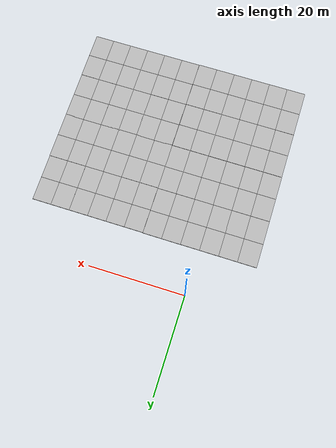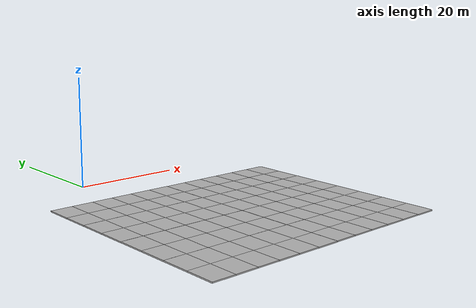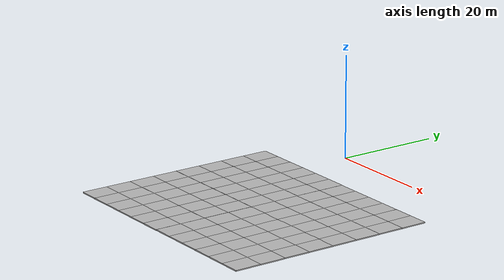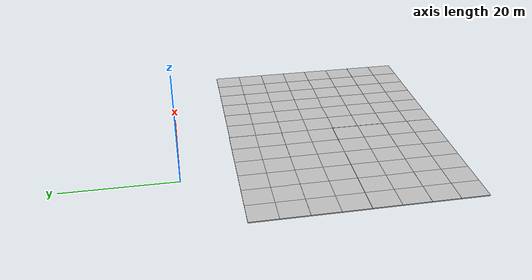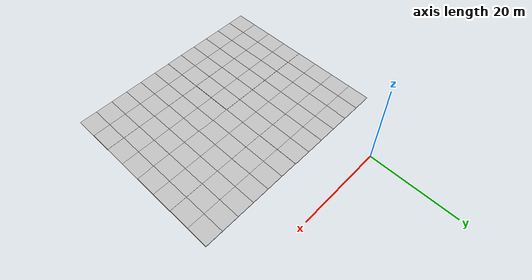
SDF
<sdf version="1.6">
 <model name="big_mud">
  <model name="big_mud_2">
   <model name="big_mud">
    <model name="mud_box">
     <static>1</static>
     <link name="link">
      <collision name="collision"><geometry><box><size>8 10 0.2</size></box></geometry></collision>
      <visual name="visual_1">
       <pose>-2 2.5 0 0 -0 0</pose>
       <cast_shadows>0</cast_shadows>
       <geometry><box><size>4 5 0.2</size></box></geometry>
       <material>
        <script>
         <uri>model://mud_box/materials/scripts</uri>
         <uri>model://mud_box/materials/textures</uri>
         <name>vrc/mud</name>
        </script>
       </material>
      </visual>
      <visual name="visual_2">
       <pose>2 2.5 0 0 -0 0</pose>
       <cast_shadows>0</cast_shadows>
       <geometry><box><size>4 5 0.2</size></box></geometry>
       <material>
        <script>
         <uri>model://mud_box/materials/scripts</uri>
         <uri>model://mud_box/materials/textures</uri>
         <name>vrc/mud</name>
        </script>
       </material>
      </visual>
      <visual name="visual_3">
       <pose>2 -2.5 0 0 -0 0</pose>
       <cast_shadows>0</cast_shadows>
       <geometry><box><size>4 5 0.2</size></box></geometry>
       <material>
        <script>
         <uri>model://mud_box/materials/scripts</uri>
         <uri>model://mud_box/materials/textures</uri>
         <name>vrc/mud</name>
        </script>
       </material>
      </visual>
      <visual name="visual_4">
       <pose>-2 -2.5 0 0 -0 0</pose>
       <cast_shadows>0</cast_shadows>
       <geometry><box><size>4 5 0.2</size></box></geometry>
       <material>
        <script>
         <uri>model://mud_box/materials/scripts</uri>
         <uri>model://mud_box/materials/textures</uri>
         <name>vrc/mud</name>
        </script>
       </material>
      </visual>
     </link>
     <pose>-0.040479 4.99985 0 0 -0 0</pose>
    </model>
    <model name="mud_box_0">
     <static>1</static>
     <link name="link">
      <collision name="collision"><geometry><box><size>8 10 0.2</size></box></geometry></collision>
      <visual name="visual_1">
       <pose>-2 2.5 0 0 -0 0</pose>
       <cast_shadows>0</cast_shadows>
       <geometry><box><size>4 5 0.2</size></box></geometry>
       <material>
        <script>
         <uri>model://mud_box/materials/scripts</uri>
         <uri>model://mud_box/materials/textures</uri>
         <name>vrc/mud</name>
        </script>
       </material>
      </visual>
      <visual name="visual_2">
       <pose>2 2.5 0 0 -0 0</pose>
       <cast_shadows>0</cast_shadows>
       <geometry><box><size>4 5 0.2</size></box></geometry>
       <material>
        <script>
         <uri>model://mud_box/materials/scripts</uri>
         <uri>model://mud_box/materials/textures</uri>
         <name>vrc/mud</name>
        </script>
       </material>
      </visual>
      <visual name="visual_3">
       <pose>2 -2.5 0 0 -0 0</pose>
       <cast_shadows>0</cast_shadows>
       <geometry><box><size>4 5 0.2</size></box></geometry>
       <material>
        <script>
         <uri>model://mud_box/materials/scripts</uri>
         <uri>model://mud_box/materials/textures</uri>
         <name>vrc/mud</name>
        </script>
       </material>
      </visual>
      <visual name="visual_4">
       <pose>-2 -2.5 0 0 -0 0</pose>
       <cast_shadows>0</cast_shadows>
       <geometry><box><size>4 5 0.2</size></box></geometry>
       <material>
        <script>
         <uri>model://mud_box/materials/scripts</uri>
         <uri>model://mud_box/materials/textures</uri>
         <name>vrc/mud</name>
        </script>
       </material>
      </visual>
     </link>
     <pose>7.96088 5.01054 0 0 -0 0</pose>
    </model>
    <model name="mud_box_clone">
     <static>1</static>
     <link name="link">
      <collision name="collision"><geometry><box><size>8 10 0.2</size></box></geometry></collision>
      <visual name="visual_1">
       <pose>-2 2.5 0 0 -0 0</pose>
       <cast_shadows>0</cast_shadows>
       <geometry><box><size>4 5 0.2</size></box></geometry>
       <material>
        <script>
         <uri>model://mud_box/materials/scripts</uri>
         <uri>model://mud_box/materials/textures</uri>
         <name>vrc/mud</name>
        </script>
       </material>
      </visual>
      <visual name="visual_2">
       <pose>2 2.5 0 0 -0 0</pose>
       <cast_shadows>0</cast_shadows>
       <geometry><box><size>4 5 0.2</size></box></geometry>
       <material>
        <script>
         <uri>model://mud_box/materials/scripts</uri>
         <uri>model://mud_box/materials/textures</uri>
         <name>vrc/mud</name>
        </script>
       </material>
      </visual>
      <visual name="visual_3">
       <pose>2 -2.5 0 0 -0 0</pose>
       <cast_shadows>0</cast_shadows>
       <geometry><box><size>4 5 0.2</size></box></geometry>
       <material>
        <script>
         <uri>model://mud_box/materials/scripts</uri>
         <uri>model://mud_box/materials/textures</uri>
         <name>vrc/mud</name>
        </script>
       </material>
      </visual>
      <visual name="visual_4">
       <pose>-2 -2.5 0 0 -0 0</pose>
       <cast_shadows>0</cast_shadows>
       <geometry><box><size>4 5 0.2</size></box></geometry>
       <material>
        <script>
         <uri>model://mud_box/materials/scripts</uri>
         <uri>model://mud_box/materials/textures</uri>
         <name>vrc/mud</name>
        </script>
       </material>
      </visual>
     </link>
     <pose>8.00404 -5.00098 0 0 -0 0</pose>
    </model>
    <model name="mud_box_clone_0">
     <static>1</static>
     <link name="link">
      <collision name="collision"><geometry><box><size>8 10 0.2</size></box></geometry></collision>
      <visual name="visual_1">
       <pose>-2 2.5 0 0 -0 0</pose>
       <cast_shadows>0</cast_shadows>
       <geometry><box><size>4 5 0.2</size></box></geometry>
       <material>
        <script>
         <uri>model://mud_box/materials/scripts</uri>
         <uri>model://mud_box/materials/textures</uri>
         <name>vrc/mud</name>
        </script>
       </material>
      </visual>
      <visual name="visual_2">
       <pose>2 2.5 0 0 -0 0</pose>
       <cast_shadows>0</cast_shadows>
       <geometry><box><size>4 5 0.2</size></box></geometry>
       <material>
        <script>
         <uri>model://mud_box/materials/scripts</uri>
         <uri>model://mud_box/materials/textures</uri>
         <name>vrc/mud</name>
        </script>
       </material>
      </visual>
      <visual name="visual_3">
       <pose>2 -2.5 0 0 -0 0</pose>
       <cast_shadows>0</cast_shadows>
       <geometry><box><size>4 5 0.2</size></box></geometry>
       <material>
        <script>
         <uri>model://mud_box/materials/scripts</uri>
         <uri>model://mud_box/materials/textures</uri>
         <name>vrc/mud</name>
        </script>
       </material>
      </visual>
      <visual name="visual_4">
       <pose>-2 -2.5 0 0 -0 0</pose>
       <cast_shadows>0</cast_shadows>
       <geometry><box><size>4 5 0.2</size></box></geometry>
       <material>
        <script>
         <uri>model://mud_box/materials/scripts</uri>
         <uri>model://mud_box/materials/textures</uri>
         <name>vrc/mud</name>
        </script>
       </material>
      </visual>
     </link>
     <pose>-7.97159 4.99756 0 0 -0 0</pose>
    </model>
    <model name="mud_box_clone_0_clone">
     <static>1</static>
     <link name="link">
      <collision name="collision"><geometry><box><size>8 10 0.2</size></box></geometry></collision>
      <visual name="visual_1">
       <pose>-2 2.5 0 0 -0 0</pose>
       <cast_shadows>0</cast_shadows>
       <geometry><box><size>4 5 0.2</size></box></geometry>
       <material>
        <script>
         <uri>model://mud_box/materials/scripts</uri>
         <uri>model://mud_box/materials/textures</uri>
         <name>vrc/mud</name>
        </script>
       </material>
      </visual>
      <visual name="visual_2">
       <pose>2 2.5 0 0 -0 0</pose>
       <cast_shadows>0</cast_shadows>
       <geometry><box><size>4 5 0.2</size></box></geometry>
       <material>
        <script>
         <uri>model://mud_box/materials/scripts</uri>
         <uri>model://mud_box/materials/textures</uri>
         <name>vrc/mud</name>
        </script>
       </material>
      </visual>
      <visual name="visual_3">
       <pose>2 -2.5 0 0 -0 0</pose>
       <cast_shadows>0</cast_shadows>
       <geometry><box><size>4 5 0.2</size></box></geometry>
       <material>
        <script>
         <uri>model://mud_box/materials/scripts</uri>
         <uri>model://mud_box/materials/textures</uri>
         <name>vrc/mud</name>
        </script>
       </material>
      </visual>
      <visual name="visual_4">
       <pose>-2 -2.5 0 0 -0 0</pose>
       <cast_shadows>0</cast_shadows>
       <geometry><box><size>4 5 0.2</size></box></geometry>
       <material>
        <script>
         <uri>model://mud_box/materials/scripts</uri>
         <uri>model://mud_box/materials/textures</uri>
         <name>vrc/mud</name>
        </script>
       </material>
      </visual>
     </link>
     <pose>-7.96387 -5.00926 0 0 -0 0</pose>
    </model>
    <model name="mud_box_clone_clone">
     <static>1</static>
     <link name="link">
      <collision name="collision"><geometry><box><size>8 10 0.2</size></box></geometry></collision>
      <visual name="visual_1">
       <pose>-2 2.5 0 0 -0 0</pose>
       <cast_shadows>0</cast_shadows>
       <geometry><box><size>4 5 0.2</size></box></geometry>
       <material>
        <script>
         <uri>model://mud_box/materials/scripts</uri>
         <uri>model://mud_box/materials/textures</uri>
         <name>vrc/mud</name>
        </script>
       </material>
      </visual>
      <visual name="visual_2">
       <pose>2 2.5 0 0 -0 0</pose>
       <cast_shadows>0</cast_shadows>
       <geometry><box><size>4 5 0.2</size></box></geometry>
       <material>
        <script>
         <uri>model://mud_box/materials/scripts</uri>
         <uri>model://mud_box/materials/textures</uri>
         <name>vrc/mud</name>
        </script>
       </material>
      </visual>
      <visual name="visual_3">
       <pose>2 -2.5 0 0 -0 0</pose>
       <cast_shadows>0</cast_shadows>
       <geometry><box><size>4 5 0.2</size></box></geometry>
       <material>
        <script>
         <uri>model://mud_box/materials/scripts</uri>
         <uri>model://mud_box/materials/textures</uri>
         <name>vrc/mud</name>
        </script>
       </material>
      </visual>
      <visual name="visual_4">
       <pose>-2 -2.5 0 0 -0 0</pose>
       <cast_shadows>0</cast_shadows>
       <geometry><box><size>4 5 0.2</size></box></geometry>
       <material>
        <script>
         <uri>model://mud_box/materials/scripts</uri>
         <uri>model://mud_box/materials/textures</uri>
         <name>vrc/mud</name>
        </script>
       </material>
      </visual>
     </link>
     <pose>0.011012 -4.9977 0 0 -0 0</pose>
    </model>
    <static>0</static>
    <pose>-0.037889 20.0397 0 0 -0 0</pose>
   </model>
   <model name="big_mud_0">
    <model name="mud_box">
     <static>1</static>
     <link name="link">
      <collision name="collision"><geometry><box><size>8 10 0.2</size></box></geometry></collision>
      <visual name="visual_1">
       <pose>-2 2.5 0 0 -0 0</pose>
       <cast_shadows>0</cast_shadows>
       <geometry><box><size>4 5 0.2</size></box></geometry>
       <material>
        <script>
         <uri>model://mud_box/materials/scripts</uri>
         <uri>model://mud_box/materials/textures</uri>
         <name>vrc/mud</name>
        </script>
       </material>
      </visual>
      <visual name="visual_2">
       <pose>2 2.5 0 0 -0 0</pose>
       <cast_shadows>0</cast_shadows>
       <geometry><box><size>4 5 0.2</size></box></geometry>
       <material>
        <script>
         <uri>model://mud_box/materials/scripts</uri>
         <uri>model://mud_box/materials/textures</uri>
         <name>vrc/mud</name>
        </script>
       </material>
      </visual>
      <visual name="visual_3">
       <pose>2 -2.5 0 0 -0 0</pose>
       <cast_shadows>0</cast_shadows>
       <geometry><box><size>4 5 0.2</size></box></geometry>
       <material>
        <script>
         <uri>model://mud_box/materials/scripts</uri>
         <uri>model://mud_box/materials/textures</uri>
         <name>vrc/mud</name>
        </script>
       </material>
      </visual>
      <visual name="visual_4">
       <pose>-2 -2.5 0 0 -0 0</pose>
       <cast_shadows>0</cast_shadows>
       <geometry><box><size>4 5 0.2</size></box></geometry>
       <material>
        <script>
         <uri>model://mud_box/materials/scripts</uri>
         <uri>model://mud_box/materials/textures</uri>
         <name>vrc/mud</name>
        </script>
       </material>
      </visual>
     </link>
     <pose>-0.040479 4.99985 0 0 -0 0</pose>
    </model>
    <model name="mud_box_0">
     <static>1</static>
     <link name="link">
      <collision name="collision"><geometry><box><size>8 10 0.2</size></box></geometry></collision>
      <visual name="visual_1">
       <pose>-2 2.5 0 0 -0 0</pose>
       <cast_shadows>0</cast_shadows>
       <geometry><box><size>4 5 0.2</size></box></geometry>
       <material>
        <script>
         <uri>model://mud_box/materials/scripts</uri>
         <uri>model://mud_box/materials/textures</uri>
         <name>vrc/mud</name>
        </script>
       </material>
      </visual>
      <visual name="visual_2">
       <pose>2 2.5 0 0 -0 0</pose>
       <cast_shadows>0</cast_shadows>
       <geometry><box><size>4 5 0.2</size></box></geometry>
       <material>
        <script>
         <uri>model://mud_box/materials/scripts</uri>
         <uri>model://mud_box/materials/textures</uri>
         <name>vrc/mud</name>
        </script>
       </material>
      </visual>
      <visual name="visual_3">
       <pose>2 -2.5 0 0 -0 0</pose>
       <cast_shadows>0</cast_shadows>
       <geometry><box><size>4 5 0.2</size></box></geometry>
       <material>
        <script>
         <uri>model://mud_box/materials/scripts</uri>
         <uri>model://mud_box/materials/textures</uri>
         <name>vrc/mud</name>
        </script>
       </material>
      </visual>
      <visual name="visual_4">
       <pose>-2 -2.5 0 0 -0 0</pose>
       <cast_shadows>0</cast_shadows>
       <geometry><box><size>4 5 0.2</size></box></geometry>
       <material>
        <script>
         <uri>model://mud_box/materials/scripts</uri>
         <uri>model://mud_box/materials/textures</uri>
         <name>vrc/mud</name>
        </script>
       </material>
      </visual>
     </link>
     <pose>7.96088 5.01054 0 0 -0 0</pose>
    </model>
    <model name="mud_box_clone">
     <static>1</static>
     <link name="link">
      <collision name="collision"><geometry><box><size>8 10 0.2</size></box></geometry></collision>
      <visual name="visual_1">
       <pose>-2 2.5 0 0 -0 0</pose>
       <cast_shadows>0</cast_shadows>
       <geometry><box><size>4 5 0.2</size></box></geometry>
       <material>
        <script>
         <uri>model://mud_box/materials/scripts</uri>
         <uri>model://mud_box/materials/textures</uri>
         <name>vrc/mud</name>
        </script>
       </material>
      </visual>
      <visual name="visual_2">
       <pose>2 2.5 0 0 -0 0</pose>
       <cast_shadows>0</cast_shadows>
       <geometry><box><size>4 5 0.2</size></box></geometry>
       <material>
        <script>
         <uri>model://mud_box/materials/scripts</uri>
         <uri>model://mud_box/materials/textures</uri>
         <name>vrc/mud</name>
        </script>
       </material>
      </visual>
      <visual name="visual_3">
       <pose>2 -2.5 0 0 -0 0</pose>
       <cast_shadows>0</cast_shadows>
       <geometry><box><size>4 5 0.2</size></box></geometry>
       <material>
        <script>
         <uri>model://mud_box/materials/scripts</uri>
         <uri>model://mud_box/materials/textures</uri>
         <name>vrc/mud</name>
        </script>
       </material>
      </visual>
      <visual name="visual_4">
       <pose>-2 -2.5 0 0 -0 0</pose>
       <cast_shadows>0</cast_shadows>
       <geometry><box><size>4 5 0.2</size></box></geometry>
       <material>
        <script>
         <uri>model://mud_box/materials/scripts</uri>
         <uri>model://mud_box/materials/textures</uri>
         <name>vrc/mud</name>
        </script>
       </material>
      </visual>
     </link>
     <pose>8.00404 -5.00098 0 0 -0 0</pose>
    </model>
    <model name="mud_box_clone_0">
     <static>1</static>
     <link name="link">
      <collision name="collision"><geometry><box><size>8 10 0.2</size></box></geometry></collision>
      <visual name="visual_1">
       <pose>-2 2.5 0 0 -0 0</pose>
       <cast_shadows>0</cast_shadows>
       <geometry><box><size>4 5 0.2</size></box></geometry>
       <material>
        <script>
         <uri>model://mud_box/materials/scripts</uri>
         <uri>model://mud_box/materials/textures</uri>
         <name>vrc/mud</name>
        </script>
       </material>
      </visual>
      <visual name="visual_2">
       <pose>2 2.5 0 0 -0 0</pose>
       <cast_shadows>0</cast_shadows>
       <geometry><box><size>4 5 0.2</size></box></geometry>
       <material>
        <script>
         <uri>model://mud_box/materials/scripts</uri>
         <uri>model://mud_box/materials/textures</uri>
         <name>vrc/mud</name>
        </script>
       </material>
      </visual>
      <visual name="visual_3">
       <pose>2 -2.5 0 0 -0 0</pose>
       <cast_shadows>0</cast_shadows>
       <geometry><box><size>4 5 0.2</size></box></geometry>
       <material>
        <script>
         <uri>model://mud_box/materials/scripts</uri>
         <uri>model://mud_box/materials/textures</uri>
         <name>vrc/mud</name>
        </script>
       </material>
      </visual>
      <visual name="visual_4">
       <pose>-2 -2.5 0 0 -0 0</pose>
       <cast_shadows>0</cast_shadows>
       <geometry><box><size>4 5 0.2</size></box></geometry>
       <material>
        <script>
         <uri>model://mud_box/materials/scripts</uri>
         <uri>model://mud_box/materials/textures</uri>
         <name>vrc/mud</name>
        </script>
       </material>
      </visual>
     </link>
     <pose>-7.97159 4.99756 0 0 -0 0</pose>
    </model>
    <model name="mud_box_clone_0_clone">
     <static>1</static>
     <link name="link">
      <collision name="collision"><geometry><box><size>8 10 0.2</size></box></geometry></collision>
      <visual name="visual_1">
       <pose>-2 2.5 0 0 -0 0</pose>
       <cast_shadows>0</cast_shadows>
       <geometry><box><size>4 5 0.2</size></box></geometry>
       <material>
        <script>
         <uri>model://mud_box/materials/scripts</uri>
         <uri>model://mud_box/materials/textures</uri>
         <name>vrc/mud</name>
        </script>
       </material>
      </visual>
      <visual name="visual_2">
       <pose>2 2.5 0 0 -0 0</pose>
       <cast_shadows>0</cast_shadows>
       <geometry><box><size>4 5 0.2</size></box></geometry>
       <material>
        <script>
         <uri>model://mud_box/materials/scripts</uri>
         <uri>model://mud_box/materials/textures</uri>
         <name>vrc/mud</name>
        </script>
       </material>
      </visual>
      <visual name="visual_3">
       <pose>2 -2.5 0 0 -0 0</pose>
       <cast_shadows>0</cast_shadows>
       <geometry><box><size>4 5 0.2</size></box></geometry>
       <material>
        <script>
         <uri>model://mud_box/materials/scripts</uri>
         <uri>model://mud_box/materials/textures</uri>
         <name>vrc/mud</name>
        </script>
       </material>
      </visual>
      <visual name="visual_4">
       <pose>-2 -2.5 0 0 -0 0</pose>
       <cast_shadows>0</cast_shadows>
       <geometry><box><size>4 5 0.2</size></box></geometry>
       <material>
        <script>
         <uri>model://mud_box/materials/scripts</uri>
         <uri>model://mud_box/materials/textures</uri>
         <name>vrc/mud</name>
        </script>
       </material>
      </visual>
     </link>
     <pose>-7.96387 -5.00926 0 0 -0 0</pose>
    </model>
    <model name="mud_box_clone_clone">
     <static>1</static>
     <link name="link">
      <collision name="collision"><geometry><box><size>8 10 0.2</size></box></geometry></collision>
      <visual name="visual_1">
       <pose>-2 2.5 0 0 -0 0</pose>
       <cast_shadows>0</cast_shadows>
       <geometry><box><size>4 5 0.2</size></box></geometry>
       <material>
        <script>
         <uri>model://mud_box/materials/scripts</uri>
         <uri>model://mud_box/materials/textures</uri>
         <name>vrc/mud</name>
        </script>
       </material>
      </visual>
      <visual name="visual_2">
       <pose>2 2.5 0 0 -0 0</pose>
       <cast_shadows>0</cast_shadows>
       <geometry><box><size>4 5 0.2</size></box></geometry>
       <material>
        <script>
         <uri>model://mud_box/materials/scripts</uri>
         <uri>model://mud_box/materials/textures</uri>
         <name>vrc/mud</name>
        </script>
       </material>
      </visual>
      <visual name="visual_3">
       <pose>2 -2.5 0 0 -0 0</pose>
       <cast_shadows>0</cast_shadows>
       <geometry><box><size>4 5 0.2</size></box></geometry>
       <material>
        <script>
         <uri>model://mud_box/materials/scripts</uri>
         <uri>model://mud_box/materials/textures</uri>
         <name>vrc/mud</name>
        </script>
       </material>
      </visual>
      <visual name="visual_4">
       <pose>-2 -2.5 0 0 -0 0</pose>
       <cast_shadows>0</cast_shadows>
       <geometry><box><size>4 5 0.2</size></box></geometry>
       <material>
        <script>
         <uri>model://mud_box/materials/scripts</uri>
         <uri>model://mud_box/materials/textures</uri>
         <name>vrc/mud</name>
        </script>
       </material>
      </visual>
     </link>
     <pose>0.011012 -4.9977 0 0 -0 0</pose>
    </model>
    <static>0</static>
    <pose>23.9817 0.073412 0 0 -0 0</pose>
   </model>
   <model name="big_mud_1">
    <model name="mud_box">
     <static>1</static>
     <link name="link">
      <collision name="collision"><geometry><box><size>8 10 0.2</size></box></geometry></collision>
      <visual name="visual_1">
       <pose>-2 2.5 0 0 -0 0</pose>
       <cast_shadows>0</cast_shadows>
       <geometry><box><size>4 5 0.2</size></box></geometry>
       <material>
        <script>
         <uri>model://mud_box/materials/scripts</uri>
         <uri>model://mud_box/materials/textures</uri>
         <name>vrc/mud</name>
        </script>
       </material>
      </visual>
      <visual name="visual_2">
       <pose>2 2.5 0 0 -0 0</pose>
       <cast_shadows>0</cast_shadows>
       <geometry><box><size>4 5 0.2</size></box></geometry>
       <material>
        <script>
         <uri>model://mud_box/materials/scripts</uri>
         <uri>model://mud_box/materials/textures</uri>
         <name>vrc/mud</name>
        </script>
       </material>
      </visual>
      <visual name="visual_3">
       <pose>2 -2.5 0 0 -0 0</pose>
       <cast_shadows>0</cast_shadows>
       <geometry><box><size>4 5 0.2</size></box></geometry>
       <material>
        <script>
         <uri>model://mud_box/materials/scripts</uri>
         <uri>model://mud_box/materials/textures</uri>
         <name>vrc/mud</name>
        </script>
       </material>
      </visual>
      <visual name="visual_4">
       <pose>-2 -2.5 0 0 -0 0</pose>
       <cast_shadows>0</cast_shadows>
       <geometry><box><size>4 5 0.2</size></box></geometry>
       <material>
        <script>
         <uri>model://mud_box/materials/scripts</uri>
         <uri>model://mud_box/materials/textures</uri>
         <name>vrc/mud</name>
        </script>
       </material>
      </visual>
     </link>
     <pose>-0.040479 4.99985 0 0 -0 0</pose>
    </model>
    <model name="mud_box_0">
     <static>1</static>
     <link name="link">
      <collision name="collision"><geometry><box><size>8 10 0.2</size></box></geometry></collision>
      <visual name="visual_1">
       <pose>-2 2.5 0 0 -0 0</pose>
       <cast_shadows>0</cast_shadows>
       <geometry><box><size>4 5 0.2</size></box></geometry>
       <material>
        <script>
         <uri>model://mud_box/materials/scripts</uri>
         <uri>model://mud_box/materials/textures</uri>
         <name>vrc/mud</name>
        </script>
       </material>
      </visual>
      <visual name="visual_2">
       <pose>2 2.5 0 0 -0 0</pose>
       <cast_shadows>0</cast_shadows>
       <geometry><box><size>4 5 0.2</size></box></geometry>
       <material>
        <script>
         <uri>model://mud_box/materials/scripts</uri>
         <uri>model://mud_box/materials/textures</uri>
         <name>vrc/mud</name>
        </script>
       </material>
      </visual>
      <visual name="visual_3">
       <pose>2 -2.5 0 0 -0 0</pose>
       <cast_shadows>0</cast_shadows>
       <geometry><box><size>4 5 0.2</size></box></geometry>
       <material>
        <script>
         <uri>model://mud_box/materials/scripts</uri>
         <uri>model://mud_box/materials/textures</uri>
         <name>vrc/mud</name>
        </script>
       </material>
      </visual>
      <visual name="visual_4">
       <pose>-2 -2.5 0 0 -0 0</pose>
       <cast_shadows>0</cast_shadows>
       <geometry><box><size>4 5 0.2</size></box></geometry>
       <material>
        <script>
         <uri>model://mud_box/materials/scripts</uri>
         <uri>model://mud_box/materials/textures</uri>
         <name>vrc/mud</name>
        </script>
       </material>
      </visual>
     </link>
     <pose>7.96088 5.01054 0 0 -0 0</pose>
    </model>
    <model name="mud_box_clone">
     <static>1</static>
     <link name="link">
      <collision name="collision"><geometry><box><size>8 10 0.2</size></box></geometry></collision>
      <visual name="visual_1">
       <pose>-2 2.5 0 0 -0 0</pose>
       <cast_shadows>0</cast_shadows>
       <geometry><box><size>4 5 0.2</size></box></geometry>
       <material>
        <script>
         <uri>model://mud_box/materials/scripts</uri>
         <uri>model://mud_box/materials/textures</uri>
         <name>vrc/mud</name>
        </script>
       </material>
      </visual>
      <visual name="visual_2">
       <pose>2 2.5 0 0 -0 0</pose>
       <cast_shadows>0</cast_shadows>
       <geometry><box><size>4 5 0.2</size></box></geometry>
       <material>
        <script>
         <uri>model://mud_box/materials/scripts</uri>
         <uri>model://mud_box/materials/textures</uri>
         <name>vrc/mud</name>
        </script>
       </material>
      </visual>
      <visual name="visual_3">
       <pose>2 -2.5 0 0 -0 0</pose>
       <cast_shadows>0</cast_shadows>
       <geometry><box><size>4 5 0.2</size></box></geometry>
       <material>
        <script>
         <uri>model://mud_box/materials/scripts</uri>
         <uri>model://mud_box/materials/textures</uri>
         <name>vrc/mud</name>
        </script>
       </material>
      </visual>
      <visual name="visual_4">
       <pose>-2 -2.5 0 0 -0 0</pose>
       <cast_shadows>0</cast_shadows>
       <geometry><box><size>4 5 0.2</size></box></geometry>
       <material>
        <script>
         <uri>model://mud_box/materials/scripts</uri>
         <uri>model://mud_box/materials/textures</uri>
         <name>vrc/mud</name>
        </script>
       </material>
      </visual>
     </link>
     <pose>8.00404 -5.00098 0 0 -0 0</pose>
    </model>
    <model name="mud_box_clone_0">
     <static>1</static>
     <link name="link">
      <collision name="collision"><geometry><box><size>8 10 0.2</size></box></geometry></collision>
      <visual name="visual_1">
       <pose>-2 2.5 0 0 -0 0</pose>
       <cast_shadows>0</cast_shadows>
       <geometry><box><size>4 5 0.2</size></box></geometry>
       <material>
        <script>
         <uri>model://mud_box/materials/scripts</uri>
         <uri>model://mud_box/materials/textures</uri>
         <name>vrc/mud</name>
        </script>
       </material>
      </visual>
      <visual name="visual_2">
       <pose>2 2.5 0 0 -0 0</pose>
       <cast_shadows>0</cast_shadows>
       <geometry><box><size>4 5 0.2</size></box></geometry>
       <material>
        <script>
         <uri>model://mud_box/materials/scripts</uri>
         <uri>model://mud_box/materials/textures</uri>
         <name>vrc/mud</name>
        </script>
       </material>
      </visual>
      <visual name="visual_3">
       <pose>2 -2.5 0 0 -0 0</pose>
       <cast_shadows>0</cast_shadows>
       <geometry><box><size>4 5 0.2</size></box></geometry>
       <material>
        <script>
         <uri>model://mud_box/materials/scripts</uri>
         <uri>model://mud_box/materials/textures</uri>
         <name>vrc/mud</name>
        </script>
       </material>
      </visual>
      <visual name="visual_4">
       <pose>-2 -2.5 0 0 -0 0</pose>
       <cast_shadows>0</cast_shadows>
       <geometry><box><size>4 5 0.2</size></box></geometry>
       <material>
        <script>
         <uri>model://mud_box/materials/scripts</uri>
         <uri>model://mud_box/materials/textures</uri>
         <name>vrc/mud</name>
        </script>
       </material>
      </visual>
     </link>
     <pose>-7.97159 4.99756 0 0 -0 0</pose>
    </model>
    <model name="mud_box_clone_0_clone">
     <static>1</static>
     <link name="link">
      <collision name="collision"><geometry><box><size>8 10 0.2</size></box></geometry></collision>
      <visual name="visual_1">
       <pose>-2 2.5 0 0 -0 0</pose>
       <cast_shadows>0</cast_shadows>
       <geometry><box><size>4 5 0.2</size></box></geometry>
       <material>
        <script>
         <uri>model://mud_box/materials/scripts</uri>
         <uri>model://mud_box/materials/textures</uri>
         <name>vrc/mud</name>
        </script>
       </material>
      </visual>
      <visual name="visual_2">
       <pose>2 2.5 0 0 -0 0</pose>
       <cast_shadows>0</cast_shadows>
       <geometry><box><size>4 5 0.2</size></box></geometry>
       <material>
        <script>
         <uri>model://mud_box/materials/scripts</uri>
         <uri>model://mud_box/materials/textures</uri>
         <name>vrc/mud</name>
        </script>
       </material>
      </visual>
      <visual name="visual_3">
       <pose>2 -2.5 0 0 -0 0</pose>
       <cast_shadows>0</cast_shadows>
       <geometry><box><size>4 5 0.2</size></box></geometry>
       <material>
        <script>
         <uri>model://mud_box/materials/scripts</uri>
         <uri>model://mud_box/materials/textures</uri>
         <name>vrc/mud</name>
        </script>
       </material>
      </visual>
      <visual name="visual_4">
       <pose>-2 -2.5 0 0 -0 0</pose>
       <cast_shadows>0</cast_shadows>
       <geometry><box><size>4 5 0.2</size></box></geometry>
       <material>
        <script>
         <uri>model://mud_box/materials/scripts</uri>
         <uri>model://mud_box/materials/textures</uri>
         <name>vrc/mud</name>
        </script>
       </material>
      </visual>
     </link>
     <pose>-7.96387 -5.00926 0 0 -0 0</pose>
    </model>
    <model name="mud_box_clone_clone">
     <static>1</static>
     <link name="link">
      <collision name="collision"><geometry><box><size>8 10 0.2</size></box></geometry></collision>
      <visual name="visual_1">
       <pose>-2 2.5 0 0 -0 0</pose>
       <cast_shadows>0</cast_shadows>
       <geometry><box><size>4 5 0.2</size></box></geometry>
       <material>
        <script>
         <uri>model://mud_box/materials/scripts</uri>
         <uri>model://mud_box/materials/textures</uri>
         <name>vrc/mud</name>
        </script>
       </material>
      </visual>
      <visual name="visual_2">
       <pose>2 2.5 0 0 -0 0</pose>
       <cast_shadows>0</cast_shadows>
       <geometry><box><size>4 5 0.2</size></box></geometry>
       <material>
        <script>
         <uri>model://mud_box/materials/scripts</uri>
         <uri>model://mud_box/materials/textures</uri>
         <name>vrc/mud</name>
        </script>
       </material>
      </visual>
      <visual name="visual_3">
       <pose>2 -2.5 0 0 -0 0</pose>
       <cast_shadows>0</cast_shadows>
       <geometry><box><size>4 5 0.2</size></box></geometry>
       <material>
        <script>
         <uri>model://mud_box/materials/scripts</uri>
         <uri>model://mud_box/materials/textures</uri>
         <name>vrc/mud</name>
        </script>
       </material>
      </visual>
      <visual name="visual_4">
       <pose>-2 -2.5 0 0 -0 0</pose>
       <cast_shadows>0</cast_shadows>
       <geometry><box><size>4 5 0.2</size></box></geometry>
       <material>
        <script>
         <uri>model://mud_box/materials/scripts</uri>
         <uri>model://mud_box/materials/textures</uri>
         <name>vrc/mud</name>
        </script>
       </material>
      </visual>
     </link>
     <pose>0.011012 -4.9977 0 0 -0 0</pose>
    </model>
    <static>0</static>
    <pose>23.9065 19.9843 0 0 -0 0</pose>
   </model>
   <model name="mud_box">
    <static>1</static>
    <link name="link">
     <collision name="collision"><geometry><box><size>8 10 0.2</size></box></geometry></collision>
     <visual name="visual_1">
      <pose>-2 2.5 0 0 -0 0</pose>
      <cast_shadows>0</cast_shadows>
      <geometry><box><size>4 5 0.2</size></box></geometry>
      <material>
       <script>
        <uri>model://mud_box/materials/scripts</uri>
        <uri>model://mud_box/materials/textures</uri>
        <name>vrc/mud</name>
       </script>
      </material>
     </visual>
     <visual name="visual_2">
      <pose>2 2.5 0 0 -0 0</pose>
      <cast_shadows>0</cast_shadows>
      <geometry><box><size>4 5 0.2</size></box></geometry>
      <material>
       <script>
        <uri>model://mud_box/materials/scripts</uri>
        <uri>model://mud_box/materials/textures</uri>
        <name>vrc/mud</name>
       </script>
      </material>
     </visual>
     <visual name="visual_3">
      <pose>2 -2.5 0 0 -0 0</pose>
      <cast_shadows>0</cast_shadows>
      <geometry><box><size>4 5 0.2</size></box></geometry>
      <material>
       <script>
        <uri>model://mud_box/materials/scripts</uri>
        <uri>model://mud_box/materials/textures</uri>
        <name>vrc/mud</name>
       </script>
      </material>
     </visual>
     <visual name="visual_4">
      <pose>-2 -2.5 0 0 -0 0</pose>
      <cast_shadows>0</cast_shadows>
      <geometry><box><size>4 5 0.2</size></box></geometry>
      <material>
       <script>
        <uri>model://mud_box/materials/scripts</uri>
        <uri>model://mud_box/materials/textures</uri>
        <name>vrc/mud</name>
       </script>
      </material>
     </visual>
    </link>
    <pose>-0.040479 4.99985 0 0 -0 0</pose>
   </model>
   <model name="mud_box_0">
    <static>1</static>
    <link name="link">
     <collision name="collision"><geometry><box><size>8 10 0.2</size></box></geometry></collision>
     <visual name="visual_1">
      <pose>-2 2.5 0 0 -0 0</pose>
      <cast_shadows>0</cast_shadows>
      <geometry><box><size>4 5 0.2</size></box></geometry>
      <material>
       <script>
        <uri>model://mud_box/materials/scripts</uri>
        <uri>model://mud_box/materials/textures</uri>
        <name>vrc/mud</name>
       </script>
      </material>
     </visual>
     <visual name="visual_2">
      <pose>2 2.5 0 0 -0 0</pose>
      <cast_shadows>0</cast_shadows>
      <geometry><box><size>4 5 0.2</size></box></geometry>
      <material>
       <script>
        <uri>model://mud_box/materials/scripts</uri>
        <uri>model://mud_box/materials/textures</uri>
        <name>vrc/mud</name>
       </script>
      </material>
     </visual>
     <visual name="visual_3">
      <pose>2 -2.5 0 0 -0 0</pose>
      <cast_shadows>0</cast_shadows>
      <geometry><box><size>4 5 0.2</size></box></geometry>
      <material>
       <script>
        <uri>model://mud_box/materials/scripts</uri>
        <uri>model://mud_box/materials/textures</uri>
        <name>vrc/mud</name>
       </script>
      </material>
     </visual>
     <visual name="visual_4">
      <pose>-2 -2.5 0 0 -0 0</pose>
      <cast_shadows>0</cast_shadows>
      <geometry><box><size>4 5 0.2</size></box></geometry>
      <material>
       <script>
        <uri>model://mud_box/materials/scripts</uri>
        <uri>model://mud_box/materials/textures</uri>
        <name>vrc/mud</name>
       </script>
      </material>
     </visual>
    </link>
    <pose>7.96088 5.01054 0 0 -0 0</pose>
   </model>
   <model name="mud_box_clone">
    <static>1</static>
    <link name="link">
     <collision name="collision"><geometry><box><size>8 10 0.2</size></box></geometry></collision>
     <visual name="visual_1">
      <pose>-2 2.5 0 0 -0 0</pose>
      <cast_shadows>0</cast_shadows>
      <geometry><box><size>4 5 0.2</size></box></geometry>
      <material>
       <script>
        <uri>model://mud_box/materials/scripts</uri>
        <uri>model://mud_box/materials/textures</uri>
        <name>vrc/mud</name>
       </script>
      </material>
     </visual>
     <visual name="visual_2">
      <pose>2 2.5 0 0 -0 0</pose>
      <cast_shadows>0</cast_shadows>
      <geometry><box><size>4 5 0.2</size></box></geometry>
      <material>
       <script>
        <uri>model://mud_box/materials/scripts</uri>
        <uri>model://mud_box/materials/textures</uri>
        <name>vrc/mud</name>
       </script>
      </material>
     </visual>
     <visual name="visual_3">
      <pose>2 -2.5 0 0 -0 0</pose>
      <cast_shadows>0</cast_shadows>
      <geometry><box><size>4 5 0.2</size></box></geometry>
      <material>
       <script>
        <uri>model://mud_box/materials/scripts</uri>
        <uri>model://mud_box/materials/textures</uri>
        <name>vrc/mud</name>
       </script>
      </material>
     </visual>
     <visual name="visual_4">
      <pose>-2 -2.5 0 0 -0 0</pose>
      <cast_shadows>0</cast_shadows>
      <geometry><box><size>4 5 0.2</size></box></geometry>
      <material>
       <script>
        <uri>model://mud_box/materials/scripts</uri>
        <uri>model://mud_box/materials/textures</uri>
        <name>vrc/mud</name>
       </script>
      </material>
     </visual>
    </link>
    <pose>8.00404 -5.00098 0 0 -0 0</pose>
   </model>
   <model name="mud_box_clone_0">
    <static>1</static>
    <link name="link">
     <collision name="collision"><geometry><box><size>8 10 0.2</size></box></geometry></collision>
     <visual name="visual_1">
      <pose>-2 2.5 0 0 -0 0</pose>
      <cast_shadows>0</cast_shadows>
      <geometry><box><size>4 5 0.2</size></box></geometry>
      <material>
       <script>
        <uri>model://mud_box/materials/scripts</uri>
        <uri>model://mud_box/materials/textures</uri>
        <name>vrc/mud</name>
       </script>
      </material>
     </visual>
     <visual name="visual_2">
      <pose>2 2.5 0 0 -0 0</pose>
      <cast_shadows>0</cast_shadows>
      <geometry><box><size>4 5 0.2</size></box></geometry>
      <material>
       <script>
        <uri>model://mud_box/materials/scripts</uri>
        <uri>model://mud_box/materials/textures</uri>
        <name>vrc/mud</name>
       </script>
      </material>
     </visual>
     <visual name="visual_3">
      <pose>2 -2.5 0 0 -0 0</pose>
      <cast_shadows>0</cast_shadows>
      <geometry><box><size>4 5 0.2</size></box></geometry>
      <material>
       <script>
        <uri>model://mud_box/materials/scripts</uri>
        <uri>model://mud_box/materials/textures</uri>
        <name>vrc/mud</name>
       </script>
      </material>
     </visual>
     <visual name="visual_4">
      <pose>-2 -2.5 0 0 -0 0</pose>
      <cast_shadows>0</cast_shadows>
      <geometry><box><size>4 5 0.2</size></box></geometry>
      <material>
       <script>
        <uri>model://mud_box/materials/scripts</uri>
        <uri>model://mud_box/materials/textures</uri>
        <name>vrc/mud</name>
       </script>
      </material>
     </visual>
    </link>
    <pose>-7.97159 4.99756 0 0 -0 0</pose>
   </model>
   <model name="mud_box_clone_0_clone">
    <static>1</static>
    <link name="link">
     <collision name="collision"><geometry><box><size>8 10 0.2</size></box></geometry></collision>
     <visual name="visual_1">
      <pose>-2 2.5 0 0 -0 0</pose>
      <cast_shadows>0</cast_shadows>
      <geometry><box><size>4 5 0.2</size></box></geometry>
      <material>
       <script>
        <uri>model://mud_box/materials/scripts</uri>
        <uri>model://mud_box/materials/textures</uri>
        <name>vrc/mud</name>
       </script>
      </material>
     </visual>
     <visual name="visual_2">
      <pose>2 2.5 0 0 -0 0</pose>
      <cast_shadows>0</cast_shadows>
      <geometry><box><size>4 5 0.2</size></box></geometry>
      <material>
       <script>
        <uri>model://mud_box/materials/scripts</uri>
        <uri>model://mud_box/materials/textures</uri>
        <name>vrc/mud</name>
       </script>
      </material>
     </visual>
     <visual name="visual_3">
      <pose>2 -2.5 0 0 -0 0</pose>
      <cast_shadows>0</cast_shadows>
      <geometry><box><size>4 5 0.2</size></box></geometry>
      <material>
       <script>
        <uri>model://mud_box/materials/scripts</uri>
        <uri>model://mud_box/materials/textures</uri>
        <name>vrc/mud</name>
       </script>
      </material>
     </visual>
     <visual name="visual_4">
      <pose>-2 -2.5 0 0 -0 0</pose>
      <cast_shadows>0</cast_shadows>
      <geometry><box><size>4 5 0.2</size></box></geometry>
      <material>
       <script>
        <uri>model://mud_box/materials/scripts</uri>
        <uri>model://mud_box/materials/textures</uri>
        <name>vrc/mud</name>
       </script>
      </material>
     </visual>
    </link>
    <pose>-7.96387 -5.00926 0 0 -0 0</pose>
   </model>
   <model name="mud_box_clone_clone">
    <static>1</static>
    <link name="link">
     <collision name="collision"><geometry><box><size>8 10 0.2</size></box></geometry></collision>
     <visual name="visual_1">
      <pose>-2 2.5 0 0 -0 0</pose>
      <cast_shadows>0</cast_shadows>
      <geometry><box><size>4 5 0.2</size></box></geometry>
      <material>
       <script>
        <uri>model://mud_box/materials/scripts</uri>
        <uri>model://mud_box/materials/textures</uri>
        <name>vrc/mud</name>
       </script>
      </material>
     </visual>
     <visual name="visual_2">
      <pose>2 2.5 0 0 -0 0</pose>
      <cast_shadows>0</cast_shadows>
      <geometry><box><size>4 5 0.2</size></box></geometry>
      <material>
       <script>
        <uri>model://mud_box/materials/scripts</uri>
        <uri>model://mud_box/materials/textures</uri>
        <name>vrc/mud</name>
       </script>
      </material>
     </visual>
     <visual name="visual_3">
      <pose>2 -2.5 0 0 -0 0</pose>
      <cast_shadows>0</cast_shadows>
      <geometry><box><size>4 5 0.2</size></box></geometry>
      <material>
       <script>
        <uri>model://mud_box/materials/scripts</uri>
        <uri>model://mud_box/materials/textures</uri>
        <name>vrc/mud</name>
       </script>
      </material>
     </visual>
     <visual name="visual_4">
      <pose>-2 -2.5 0 0 -0 0</pose>
      <cast_shadows>0</cast_shadows>
      <geometry><box><size>4 5 0.2</size></box></geometry>
      <material>
       <script>
        <uri>model://mud_box/materials/scripts</uri>
        <uri>model://mud_box/materials/textures</uri>
        <name>vrc/mud</name>
       </script>
      </material>
     </visual>
    </link>
    <pose>0.011012 -4.9977 0 0 -0 0</pose>
   </model>
   <static>0</static>
   <pose>-0.008586 -39.7362 0 0 -0 0</pose>
  </model>
  <static>0</static>
 </model>
</sdf>
